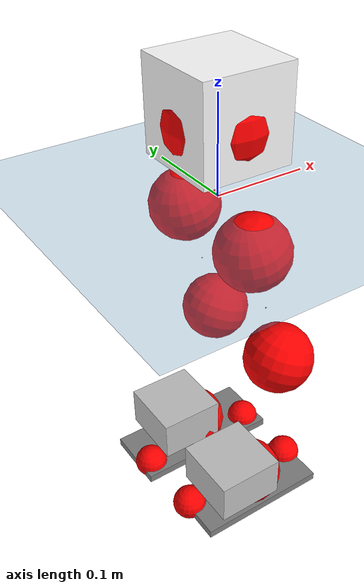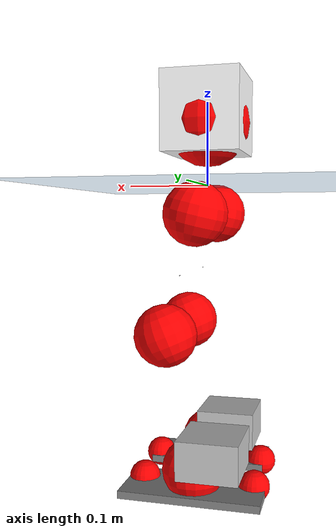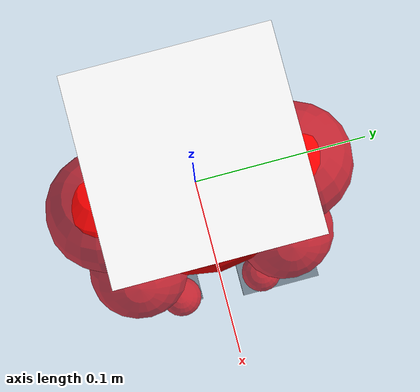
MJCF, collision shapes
<mujoco model="pi_12dof_release_v1">
  <compiler angle="radian" assetdir="assets" balanceinertia="true" inertiafromgeom="false"/>

  <option timestep="0.005" density="1.2" viscosity="2e-05"/>

  <size nkey="1"/>

  <visual>
    <quality shadowsize="8192"/>
    <map shadowclip="0.5"/>
  </visual>

  <default>
    <default class="/">
      <joint armature="0.01" damping="0.01" frictionloss="0.01"/>
      <geom contype="0" conaffinity="0" group="1" solref="-1000 -80"/>
      <site size="0.01 0.005 0.005" group="5"/>
      <general forcelimited="true" biastype="affine" gainprm="20" biasprm="0 -20 -0.5"/>
      <default class="foot">
        <geom size="0.0845 0.036 0.005" type="box" condim="6" group="4" priority="1" friction="0.9 0.2 0.2" solimp="0.015 1 0.005"/>
      </default>
      <default class="reward_collision_sphere">
        <geom group="5" rgba="1 0 0 1"/>
      </default>
    </default>
  </default>

  <asset>
    <texture type="skybox" colorspace="auto" name="//unnamed_texture_0" builtin="gradient" rgb1="0.95 0.95 0.95" rgb2="0.95 0.95 0.95" width="100" height="600"/>
    <texture type="2d" colorspace="auto" name="texplane" builtin="checker" rgb1="0.345 0.575 0.748" rgb2="0.345 0.575 0.748" markrgb="1 1 1" width="512" height="512"/>
    <material name="MatPlane" class="/" texture="texplane" texuniform="true" texrepeat="2 2" specular="0.9"/>
    <mesh name="baselink_1" class="/" file="baselink_1.STL"/>
    <mesh name="r_hip_pitch_link" class="/" file="r_hip_pitch_link.STL"/>
    <mesh name="r_hip_roll_link" class="/" file="r_hip_roll_link.STL"/>
    <mesh name="r_thigh_link" class="/" file="r_thigh_link.STL"/>
    <mesh name="r_calf_link" class="/" file="r_calf_link.STL"/>
    <mesh name="r_ankle_pitch_link" class="/" file="r_ankle_pitch_link.STL"/>
    <mesh name="r_ankle_roll_link" class="/" file="r_ankle_roll_link.STL"/>
    <mesh name="l_hip_pitch_link" class="/" file="l_hip_pitch_link.STL"/>
    <mesh name="l_hip_roll_link" class="/" file="l_hip_roll_link.STL"/>
    <mesh name="l_thigh_link" class="/" file="l_thigh_link.STL"/>
    <mesh name="l_calf_link" class="/" file="l_calf_link.STL"/>
    <mesh name="l_ankle_pitch_link" class="/" file="l_ankle_pitch_link.STL"/>
    <mesh name="l_ankle_roll_link" class="/" file="l_ankle_roll_link.STL"/>
  </asset>

  <worldbody>
    <geom name="floor" class="/" size="100 100 0.125" type="plane" group="0" material="MatPlane"/>
    <light name="toplight_shadow" class="/" pos="0 0 5" dir="0.0990148 0.0990148 -0.990148" type="directional" ambient="0.04 0.04 0.04" diffuse="0.55 0.55 0.55" specular="0.12 0.12 0.12"/>
    <light name="toplight_fill" class="/" pos="0 0 5" dir="0.0990148 0.0990148 -0.990148" type="directional" castshadow="false" ambient="0.04 0.04 0.04" diffuse="0.3 0.3 0.3" specular="0.08 0.08 0.08"/>
    <body name="trunk" pos="7.13274e-05 0.000316504 -7.88487e-05" quat="1 -1.13079e-05 1.5403e-05 1.31587e-05">
      <inertial pos="0.00197149 -0.000748621 0.0429644" quat="0.693244 0.0149092 0.00494372 0.720532" mass="1.82219" diaginertia="0.010568 0.00217946 0.00570301"/>
      <joint name="//unnamed_joint_0" type="free"/>
      <geom name="//unnamed_geom_1" class="/" type="mesh" density="0" rgba="1 1 1 1" mesh="baselink_1"/>
      <geom name="//unnamed_geom_2" class="/" size="0.047148 0.047148 0.047148" pos="0 0 0.0851934" type="box" rgba="1 1 1 1"/>
      <geom name="//unnamed_geom_3" class="reward_collision_sphere" size="0.0518628" pos="0 0 0.0745443"/>
      <site name="imu" class="/" pos="-0.00218806 -0.00471307 0.00162205" size="0.00942959"/>
      <camera name="track" class="/" pos="0 -1.5011 0" quat="0.707107 0.707107 0 0" mode="trackcom"/>
      <camera name="ego_camera" class="/" pos="0.0760056 0 0.191685" quat="-0.5 -0.5 0.5 0.5"/>
      <body name="r_hip_pitch_link" pos="-0.000471993 -0.0154991 -0.0339629" quat="0.992193 -0.00010728 -0.12471 3.83383e-05">
        <inertial pos="0.00112561 -0.0421975 -0.000987585" quat="-0.0188776 0.705795 -0.0280473 0.707609" mass="0.311758" diaginertia="0.000115939 2.36092e-05 0.000114526"/>
        <joint name="r_hip_pitch_joint" class="/" pos="0 0 0" axis="-0.00243434 -0.999997 -0.000211413" range="-1.75096 1.26855" armature="0.00944407" damping="0.0116736" frictionloss="0.00928107"/>
        <geom name="//unnamed_geom_4" class="/" type="mesh" density="0" rgba="0.75294 0.75294 0.75294 1" mesh="r_hip_pitch_link"/>
        <geom name="//unnamed_geom_5" class="/" size="0.00047148 0.00047148 0.00047148" type="box" rgba="0.75294 0.75294 0.75294 1"/>
        <body name="r_hip_roll_link" pos="0.00113898 -0.0400678 0.000187467" quat="1 0.000202055 0.000141341 0.000103188">
          <inertial pos="-0.001456 -0.00111573 -0.0649696" quat="0.706503 -0.0782898 -0.0819946 0.698571" mass="0.325648" diaginertia="0.000355824 6.60815e-05 0.000175287"/>
          <joint name="r_hip_roll_joint" class="/" pos="0 0 0" axis="-0.999992 -0.00164677 0.00359017" range="-0.123072 0.495618" armature="0.00976992" damping="0.00326707" frictionloss="0.00956395"/>
          <geom name="//unnamed_geom_6" class="/" type="mesh" density="0" rgba="0.75294 0.75294 0.75294 1" mesh="r_hip_roll_link"/>
          <geom name="//unnamed_geom_7" class="/" size="0.00047148 0.00047148 0.00047148" type="box" rgba="0.75294 0.75294 0.75294 1"/>
          <geom name="//unnamed_geom_8" class="reward_collision_sphere" size="0.0377184"/>
          <body name="r_thigh_link" pos="0.000529939 6.90231e-05 -0.0734272" quat="1 -9.03907e-05 -0.000370744 -0.000292447">
            <inertial pos="-0.000241226 0.000767941 -0.0517661" quat="0.73735 0.675511 0.00044939 -0.000197016" mass="0.094173" diaginertia="0.000134202 2.27958e-05 7.8298e-05"/>
            <joint name="r_thigh_joint" class="/" pos="0 0 0" axis="-0.000744595 -0.00040711 -1" range="-0.288705 0.594253" armature="0.00975441" damping="0.00414682" frictionloss="0.00953047"/>
            <geom name="//unnamed_geom_9" class="/" type="mesh" density="0" rgba="0.75294 0.75294 0.75294 1" mesh="r_thigh_link"/>
            <geom name="//unnamed_geom_10" class="/" size="0.00047148 0.00047148 0.00047148" type="box" rgba="0.75294 0.75294 0.75294 1"/>
            <body name="r_calf_link" pos="0.00063228 -0.0014328 -0.0746407" quat="0.94765 6.68504e-06 0.319312 7.04969e-07">
              <inertial pos="0.000378522 -0.000394409 -0.0740068" quat="0.999986 -0.00159819 0.000213099 0.00505951" mass="0.678472" diaginertia="0.00375968 0.000816685 0.000238084"/>
              <joint name="r_calf_joint" class="/" pos="0 0 0" axis="-0.0036764 -0.999991 -0.00188538" range="-1.6215 0.629046" armature="0.00930155" damping="0.00724464" frictionloss="0.00900142"/>
              <geom name="//unnamed_geom_11" class="/" type="mesh" density="0" rgba="0.75294 0.75294 0.75294 1" mesh="r_calf_link"/>
              <geom name="//unnamed_geom_12" class="/" size="0.00047148 0.00047148 0.00047148" type="box" rgba="0.75294 0.75294 0.75294 1"/>
              <geom name="//unnamed_geom_13" class="reward_collision_sphere" size="0.0377184"/>
              <body name="r_ankle_pitch_link" pos="0.0011397 0.00186335 -0.150009" quat="0.980112 -0.000324853 -0.198445 -0.000205666">
                <inertial pos="0.00579699 0.00143761 -1.90239e-05" quat="0.00644402 0.708077 -0.00122523 0.706104" mass="0.146364" diaginertia="0.000328125 5.28557e-05 0.000165175"/>
                <joint name="r_ankle_pitch_joint" class="/" pos="0 0 0" axis="-0.00215107 -0.999982 0.00555013" range="-1.31645 0.516978" armature="0.00929338" damping="0.0053775" frictionloss="0.00963607"/>
                <geom name="//unnamed_geom_14" class="/" type="mesh" density="0" rgba="0.75294 0.75294 0.75294 1" mesh="r_ankle_pitch_link"/>
                <geom name="//unnamed_geom_15" class="/" size="0.0367754 0.0377184 0.023574" type="box" rgba="0.75294 0.75294 0.75294 1"/>
                <body name="r_ankle_roll_link" pos="0.0762335 0.00283661 0.000460537" quat="1 -0.000105494 -2.93208e-05 0.00012149">
                  <inertial pos="-0.0248567 0.000326987 -0.0161581" quat="0.561467 0.433069 0.43416 0.555618" mass="0.434541" diaginertia="0.00121682 0.000245411 0.000387574"/>
                  <joint name="r_ankle_roll_joint" class="/" pos="0 0 0" axis="-1 0.000209656 -0.000726672" range="-0.172758 0.15526" armature="0.00941564" damping="0.0106417" frictionloss="0.00986696"/>
                  <geom name="//unnamed_geom_16" class="/" type="mesh" density="0" rgba="0.75294 0.75294 0.75294 1" mesh="r_ankle_roll_link"/>
                  <geom name="//unnamed_geom_17" class="/" type="mesh" rgba="0.75294 0.75294 0.75294 1" mesh="r_ankle_roll_link"/>
                  <geom name="right_foot" class="foot" size="0.0742624 0.0342164 0.00460479" pos="-0.0516838 0 -0.0468564"/>
                  <geom name="//unnamed_geom_19" class="reward_collision_sphere" size="0.0377184" pos="-0.0506704 0 -0.0212984"/>
                  <geom name="//unnamed_geom_20" class="reward_collision_sphere" size="0.0188592" pos="0.0152011 0.015011 -0.0425967"/>
                  <geom name="//unnamed_geom_21" class="reward_collision_sphere" size="0.0188592" pos="-0.121609 0.015011 -0.0425967"/>
                  <site name="right_foot" class="foot" pos="-0.0516838 0 -0.0468564" size="0.00942959"/>
                </body>
              </body>
            </body>
          </body>
        </body>
      </body>
      <body name="l_hip_pitch_link" pos="-0.000591777 0.0174963 -0.0344883" quat="0.992196 -8.20162e-05 -0.124689 -5.65376e-05">
        <inertial pos="0.00116816 0.0401385 -0.00107977" quat="-0.0384773 0.705458 0.029537 0.707089" mass="0.324054" diaginertia="0.000135772 2.48067e-05 0.000136638"/>
        <joint name="l_hip_pitch_joint" class="/" pos="0 0 0" axis="6.23918e-06 1 -5.46435e-05" range="-1.25054 1.749" armature="0.00961432" damping="0.00246899" frictionloss="0.00907333"/>
        <geom name="//unnamed_geom_22" class="/" type="mesh" density="0" rgba="0.75294 0.75294 0.75294 1" mesh="l_hip_pitch_link"/>
        <geom name="//unnamed_geom_23" class="/" size="0.00047148 0.00047148 0.00047148" type="box" rgba="0.75294 0.75294 0.75294 1"/>
        <body name="l_hip_roll_link" pos="0.00106538 0.0419679 -0.00100845" quat="1 7.20798e-05 -2.48653e-05 -0.000114337">
          <inertial pos="-0.00113182 -7.80368e-05 -0.0660983" quat="0.6977 -0.0750716 -0.0740542 0.708587" mass="0.329575" diaginertia="0.000353106 6.51731e-05 0.000175143"/>
          <joint name="l_hip_roll_joint" class="/" pos="0 0 0" axis="-0.999994 0.000799913 -0.00351194" range="-0.517058 0.118723" armature="0.00937134" damping="0.00726618" frictionloss="0.00921054"/>
          <geom name="//unnamed_geom_24" class="/" type="mesh" density="0" rgba="0.75294 0.75294 0.75294 1" mesh="l_hip_roll_link"/>
          <geom name="//unnamed_geom_25" class="/" size="0.00047148 0.00047148 0.00047148" type="box" rgba="0.75294 0.75294 0.75294 1"/>
          <geom name="//unnamed_geom_26" class="reward_collision_sphere" size="0.0377184"/>
          <body name="l_thigh_link" pos="0.000866167 -0.0017164 -0.0738343" quat="1 7.52592e-05 -3.68822e-05 9.31939e-05">
            <inertial pos="0.000435763 -0.00139116 -0.0509933" quat="0.676269 0.736654 0.000282893 0.00102714" mass="0.0923783" diaginertia="0.000132512 2.23789e-05 7.85248e-05"/>
            <joint name="l_thigh_joint" class="/" pos="0 0 0" axis="-3.63413e-05 0.000651088 -1" range="-0.594143 0.298349" armature="0.00986543" damping="0.0013227" frictionloss="0.00941283"/>
            <geom name="//unnamed_geom_27" class="/" type="mesh" density="0" rgba="0.75294 0.75294 0.75294 1" mesh="l_thigh_link"/>
            <geom name="//unnamed_geom_28" class="/" size="0.00047148 0.00047148 0.00047148" type="box" rgba="0.75294 0.75294 0.75294 1"/>
            <body name="l_calf_link" pos="-0.000627651 0.000240724 -0.0738727" quat="0.947648 -3.43476e-05 0.319318 1.98036e-05">
              <inertial pos="0.000331161 0.00222108 -0.0741599" quat="0.999982 0.00438073 -0.000774283 0.00393859" mass="0.671716" diaginertia="0.00369968 0.000818888 0.000238286"/>
              <joint name="l_calf_joint" class="/" pos="0 0 0" axis="-0.00492048 0.999988 0.000463754" stiffness="0.00215211" range="-0.641433 1.66333" armature="0.00941844" damping="0.00869214" frictionloss="0.00927442"/>
              <geom name="//unnamed_geom_29" class="/" type="mesh" density="0" rgba="0.75294 0.75294 0.75294 1" mesh="l_calf_link"/>
              <geom name="//unnamed_geom_30" class="/" size="0.00047148 0.00047148 0.00047148" type="box" rgba="0.75294 0.75294 0.75294 1"/>
              <geom name="//unnamed_geom_31" class="reward_collision_sphere" size="0.0377184"/>
              <body name="l_ankle_pitch_link" pos="0.00020446 0.000665261 -0.149491" quat="0.980108 0.000162178 -0.198463 0.000222765">
                <inertial pos="0.00485931 -0.00102277 -0.00104714" quat="-0.00290539 0.70615 0.000531934 0.708056" mass="0.148619" diaginertia="0.000332085 5.33235e-05 0.000166034"/>
                <joint name="l_ankle_pitch_joint" class="/" pos="0 0 0" axis="-0.000162607 1 0.000257645" stiffness="0.00246575" range="-0.505367 1.28693" armature="0.00946489" damping="0.00854118" frictionloss="0.00944622"/>
                <geom name="//unnamed_geom_32" class="/" type="mesh" density="0" rgba="0.75294 0.75294 0.75294 1" mesh="l_ankle_pitch_link"/>
                <geom name="//unnamed_geom_33" class="/" size="0.0367754 0.0377184 0.023574" type="box" rgba="0.75294 0.75294 0.75294 1"/>
                <body name="l_ankle_roll_link" pos="0.0746387 -0.000927899 -0.000436362" quat="1 -0.000106882 -0.000138491 0.000480359">
                  <inertial pos="-0.0236527 -0.000554996 -0.0151683" quat="0.561483 0.431256 0.432312 0.558446" mass="0.437626" diaginertia="0.00122212 0.000246216 0.000391389"/>
                  <joint name="l_ankle_roll_joint" class="/" pos="0 0 0" axis="-0.999974 0.000743726 -0.00716025" stiffness="0.00175033" range="-0.130844 0.161879" armature="0.00977722" damping="0.0118147" frictionloss="0.0093531"/>
                  <geom name="//unnamed_geom_34" class="/" type="mesh" density="0" rgba="0.75294 0.75294 0.75294 1" mesh="l_ankle_roll_link"/>
                  <geom name="//unnamed_geom_35" class="/" type="mesh" rgba="0.75294 0.75294 0.75294 1" mesh="l_ankle_roll_link"/>
                  <geom name="left_foot" class="foot" size="0.0843298 0.0372957 0.00465349" pos="-0.0516838 0 -0.0468564"/>
                  <geom name="//unnamed_geom_37" class="reward_collision_sphere" size="0.0377184" pos="-0.0506704 0 -0.0212984"/>
                  <geom name="//unnamed_geom_38" class="reward_collision_sphere" size="0.0188592" pos="0.0152011 -0.015011 -0.0425967"/>
                  <geom name="//unnamed_geom_39" class="reward_collision_sphere" size="0.0188592" pos="-0.121609 -0.015011 -0.0425967"/>
                  <site name="left_foot" class="foot" pos="-0.0516838 0 -0.0468564" size="0.00942959"/>
                </body>
              </body>
            </body>
          </body>
        </body>
      </body>
    </body>
  </worldbody>

  <contact>
    <pair class="/" geom1="floor" geom2="right_foot" name="//unnamed_contact_1"/>
    <pair class="/" geom1="floor" geom2="left_foot" name="//unnamed_contact_0"/>
  </contact>

  <actuator>
    <general name="r_hip_pitch_joint" class="/" joint="r_hip_pitch_joint" forcerange="-19.6674 19.6674" gainprm="19.3605" biasprm="0 -19.3605 -0.464998"/>
    <general name="r_hip_roll_joint" class="/" joint="r_hip_roll_joint" forcerange="-19.87 19.87" gainprm="19.3605" biasprm="0 -19.3605 -0.464998"/>
    <general name="r_thigh_joint" class="/" joint="r_thigh_joint" forcerange="-19.3169 19.3169" gainprm="19.3605" biasprm="0 -19.3605 -0.464998"/>
    <general name="r_calf_joint" class="/" joint="r_calf_joint" forcerange="-19.5023 19.5023" gainprm="19.3605" biasprm="0 -19.3605 -0.464998"/>
    <general name="r_ankle_pitch_joint" class="/" joint="r_ankle_pitch_joint" forcerange="-20.3445 20.3445" gainprm="19.3605" biasprm="0 -19.3605 -0.464998"/>
    <general name="r_ankle_roll_joint" class="/" joint="r_ankle_roll_joint" forcerange="-20.357 20.357" gainprm="19.3605" biasprm="0 -19.3605 -0.464998"/>
    <general name="l_hip_pitch_joint" class="/" joint="l_hip_pitch_joint" forcerange="-20.8899 20.8899" gainprm="19.3605" biasprm="0 -19.3605 -0.464998"/>
    <general name="l_hip_roll_joint" class="/" joint="l_hip_roll_joint" forcerange="-20.3687 20.3687" gainprm="19.3605" biasprm="0 -19.3605 -0.464998"/>
    <general name="l_thigh_joint" class="/" joint="l_thigh_joint" forcerange="-19.8617 19.8617" gainprm="19.3605" biasprm="0 -19.3605 -0.464998"/>
    <general name="l_calf_joint" class="/" joint="l_calf_joint" forcerange="-20.3942 20.3942" gainprm="19.3605" biasprm="0 -19.3605 -0.464998"/>
    <general name="l_ankle_pitch_joint" class="/" joint="l_ankle_pitch_joint" forcerange="-20.3752 20.3752" gainprm="19.3605" biasprm="0 -19.3605 -0.464998"/>
    <general name="l_ankle_roll_joint" class="/" joint="l_ankle_roll_joint" forcerange="-19.2087 19.2087" gainprm="19.3605" biasprm="0 -19.3605 -0.464998"/>
  </actuator>

  <sensor>
    <gyro site="imu" name="imu_angular_velocity"/>
    <velocimeter site="imu" name="imu_linear_velocity"/>
    <framelinvel objtype="site" objname="left_foot" name="left_foot_global_linear_velocity"/>
    <framelinvel objtype="site" objname="right_foot" name="right_foot_global_linear_velocity"/>
  </sensor>

  <keyframe>
    <key name="home" qpos="0 0 0.291 1 0 0 0 0.4 0 0 -0.8 0.4 0 -0.4 0 0 0.8 -0.4 0"/>
  </keyframe>
</mujoco>
